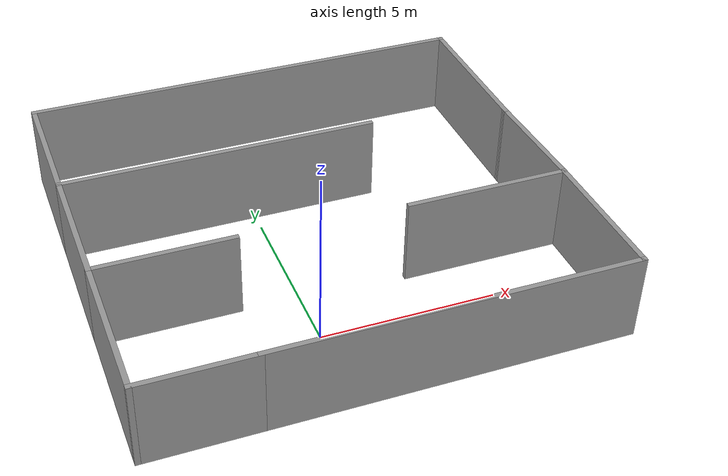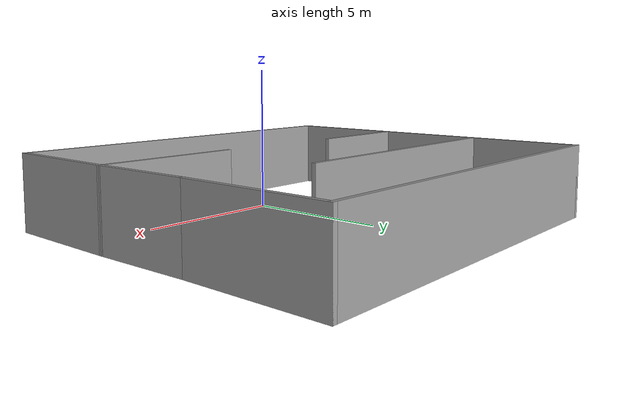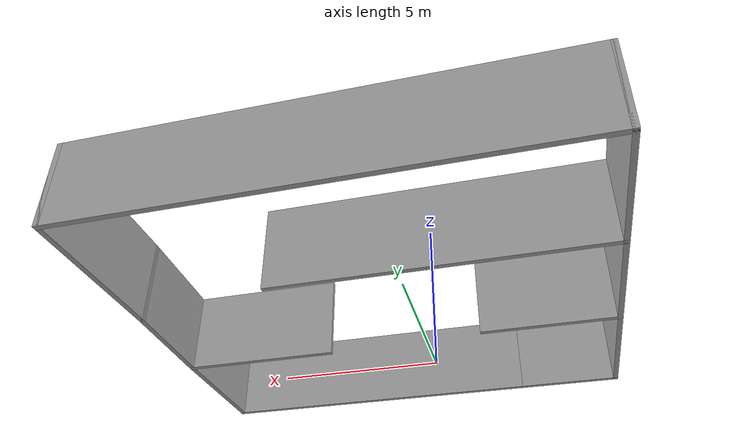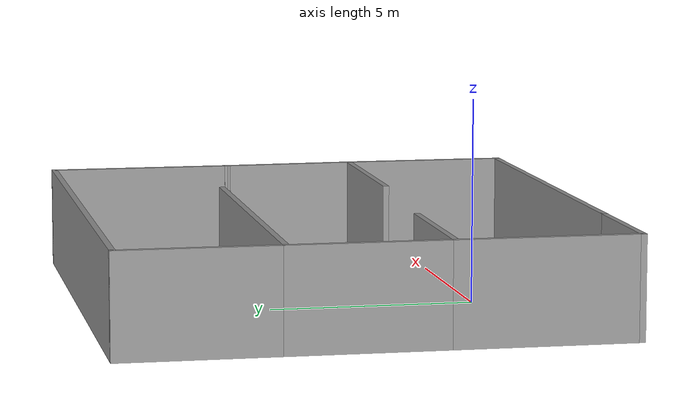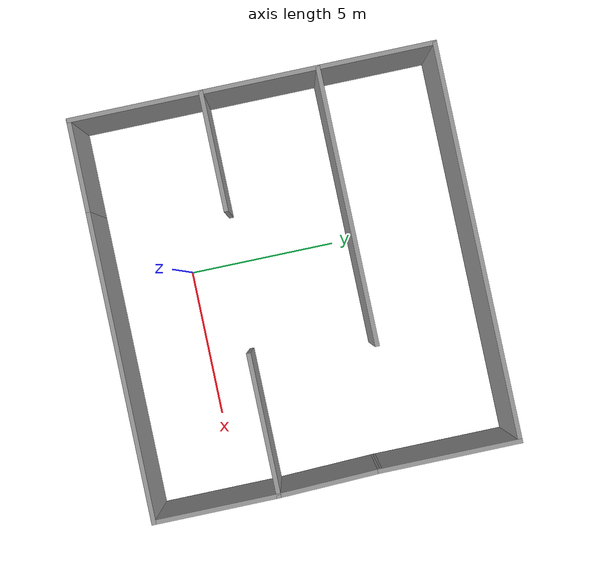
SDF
<?xml version='1.0'?>
<sdf version='1.7'>
  <model name='sample'>
    <pose>1.0811 3.425 0 0 -0 0</pose>
    <link name='Wall_10'>
      <collision name='Wall_10_Collision'>
        <geometry>
          <box>
            <size>4 0.15 2.5</size>
          </box>
        </geometry>
        <pose>0 0 1.25 0 -0 0</pose>
      </collision>
      <visual name='Wall_10_Visual'>
        <pose>0 0 1.25 0 -0 0</pose>
        <geometry>
          <box>
            <size>4 0.15 2.5</size>
          </box>
        </geometry>
        <material>
          <script>
            <uri>file://media/materials/scripts/gazebo.material</uri>
            <name>Gazebo/Grey</name>
          </script>
          <ambient>1 1 1 1</ambient>
        </material>
        <meta>
          <layer>0</layer>
        </meta>
      </visual>
      <pose>-6.6011 0.25 0 0 -0 1.5708</pose>
    </link>
    <link name='Wall_11'>
      <collision name='Wall_11_Collision'>
        <geometry>
          <box>
            <size>9.25 0.15 2.5</size>
          </box>
        </geometry>
        <pose>0 0 1.25 0 -0 0</pose>
      </collision>
      <visual name='Wall_11_Visual'>
        <pose>0 0 1.25 0 -0 0</pose>
        <geometry>
          <box>
            <size>9.25 0.15 2.5</size>
          </box>
        </geometry>
        <material>
          <script>
            <uri>file://media/materials/scripts/gazebo.material</uri>
            <name>Gazebo/Grey</name>
          </script>
          <ambient>1 1 1 1</ambient>
        </material>
        <meta>
          <layer>0</layer>
        </meta>
      </visual>
      <pose>-2.0511 2.175 0 0 -0 0</pose>
    </link>
    <link name='Wall_13'>
      <collision name='Wall_13_Collision'>
        <geometry>
          <box>
            <size>4 0.15 2.5</size>
          </box>
        </geometry>
        <pose>0 0 1.25 0 -0 0</pose>
      </collision>
      <visual name='Wall_13_Visual'>
        <pose>0 0 1.25 0 -0 0</pose>
        <geometry>
          <box>
            <size>4 0.15 2.5</size>
          </box>
        </geometry>
        <material>
          <script>
            <uri>file://media/materials/scripts/gazebo.material</uri>
            <name>Gazebo/Grey</name>
          </script>
          <ambient>1 1 1 1</ambient>
        </material>
        <meta>
          <layer>0</layer>
        </meta>
      </visual>
      <pose>-6.6011 4.1 0 0 -0 1.5708</pose>
    </link>
    <link name='Wall_14'>
      <collision name='Wall_14_Collision'>
        <geometry>
          <box>
            <size>13.25 0.15 2.5</size>
          </box>
        </geometry>
        <pose>0 0 1.25 0 -0 0</pose>
      </collision>
      <visual name='Wall_14_Visual'>
        <pose>0 0 1.25 0 -0 0</pose>
        <geometry>
          <box>
            <size>13.25 0.15 2.5</size>
          </box>
        </geometry>
        <material>
          <script>
            <uri>file://media/materials/scripts/gazebo.material</uri>
            <name>Gazebo/Grey</name>
          </script>
          <ambient>1 1 1 1</ambient>
        </material>
        <meta>
          <layer>0</layer>
        </meta>
      </visual>
      <pose>-0.051102 6.025 0 0 -0 0</pose>
    </link>
    <link name='Wall_15'>
      <collision name='Wall_15_Collision'>
        <geometry>
          <box>
            <size>4.75 0.15 2.5</size>
          </box>
        </geometry>
        <pose>0 0 1.25 0 -0 0</pose>
      </collision>
      <visual name='Wall_15_Visual'>
        <pose>0 0 1.25 0 -0 0</pose>
        <geometry>
          <box>
            <size>4.75 0.15 2.5</size>
          </box>
        </geometry>
        <material>
          <script>
            <uri>file://media/materials/scripts/gazebo.material</uri>
            <name>Gazebo/Grey</name>
          </script>
          <ambient>1 1 1 1</ambient>
        </material>
        <meta>
          <layer>0</layer>
        </meta>
      </visual>
      <pose>6.4989 3.725 0 0 -0 -1.5708</pose>
    </link>
    <link name='Wall_17'>
      <collision name='Wall_17_Collision'>
        <geometry>
          <box>
            <size>3.50149 0.15 2.5</size>
          </box>
        </geometry>
        <pose>0 0 1.25 0 -0 0</pose>
      </collision>
      <visual name='Wall_17_Visual'>
        <pose>0 0 1.25 0 -0 0</pose>
        <geometry>
          <box>
            <size>3.50149 0.15 2.5</size>
          </box>
        </geometry>
        <material>
          <script>
            <uri>file://media/materials/scripts/gazebo.material</uri>
            <name>Gazebo/Grey</name>
          </script>
          <ambient>1 1 1 1</ambient>
        </material>
        <meta>
          <layer>0</layer>
        </meta>
      </visual>
      <pose>6.5489 -0.25 0 0 -0 -1.54095</pose>
    </link>
    <link name='Wall_2'>
      <collision name='Wall_2_Collision'>
        <geometry>
          <box>
            <size>10.25 0.15 2.5</size>
          </box>
        </geometry>
        <pose>0 0 1.25 0 -0 0</pose>
      </collision>
      <visual name='Wall_2_Visual'>
        <pose>0 0 1.25 0 -0 0</pose>
        <geometry>
          <box>
            <size>10.25 0.15 2.5</size>
          </box>
        </geometry>
        <material>
          <script>
            <uri>file://media/materials/scripts/gazebo.material</uri>
            <name>Gazebo/Grey</name>
          </script>
          <ambient>1 1 1 1</ambient>
        </material>
        <meta>
          <layer>0</layer>
        </meta>
      </visual>
      <pose>1.5489 -6.025 0 0 -0 0</pose>
    </link>
    <link name='Wall_3'>
      <collision name='Wall_3_Collision'>
        <geometry>
          <box>
            <size>4.25 0.15 2.5</size>
          </box>
        </geometry>
        <pose>0 0 1.25 0 -0 0</pose>
      </collision>
      <visual name='Wall_3_Visual'>
        <pose>0 0 1.25 0 -0 0</pose>
        <geometry>
          <box>
            <size>4.25 0.15 2.5</size>
          </box>
        </geometry>
        <material>
          <script>
            <uri>file://media/materials/scripts/gazebo.material</uri>
            <name>Gazebo/Grey</name>
          </script>
          <ambient>1 1 1 1</ambient>
        </material>
        <meta>
          <layer>0</layer>
        </meta>
      </visual>
      <pose>6.5989 -3.975 0 0 -0 1.5708</pose>
    </link>
    <link name='Wall_4'>
      <collision name='Wall_4_Collision'>
        <geometry>
          <box>
            <size>4.75 0.15 2.5</size>
          </box>
        </geometry>
        <pose>0 0 1.25 0 -0 0</pose>
      </collision>
      <visual name='Wall_4_Visual'>
        <pose>0 0 1.25 0 -0 0</pose>
        <geometry>
          <box>
            <size>4.75 0.15 2.5</size>
          </box>
        </geometry>
        <material>
          <script>
            <uri>file://media/materials/scripts/gazebo.material</uri>
            <name>Gazebo/Grey</name>
          </script>
          <ambient>1 1 1 1</ambient>
        </material>
        <meta>
          <layer>0</layer>
        </meta>
      </visual>
      <pose>4.2989 -1.925 0 0 -0 3.14159</pose>
    </link>
    <link name='Wall_6'>
      <collision name='Wall_6_Collision'>
        <geometry>
          <box>
            <size>3.25 0.15 2.5</size>
          </box>
        </geometry>
        <pose>0 0 1.25 0 -0 0</pose>
      </collision>
      <visual name='Wall_6_Visual'>
        <pose>0 0 1.25 0 -0 0</pose>
        <geometry>
          <box>
            <size>3.25 0.15 2.5</size>
          </box>
        </geometry>
        <material>
          <script>
            <uri>file://media/materials/scripts/gazebo.material</uri>
            <name>Gazebo/Grey</name>
          </script>
          <ambient>1 1 1 1</ambient>
        </material>
        <meta>
          <layer>0</layer>
        </meta>
      </visual>
      <pose>-5.0511 -6.025 0 0 -0 3.14159</pose>
    </link>
    <link name='Wall_7'>
      <collision name='Wall_7_Collision'>
        <geometry>
          <box>
            <size>4.5 0.15 2.5</size>
          </box>
        </geometry>
        <pose>0 0 1.25 0 -0 0</pose>
      </collision>
      <visual name='Wall_7_Visual'>
        <pose>0 0 1.25 0 -0 0</pose>
        <geometry>
          <box>
            <size>4.5 0.15 2.5</size>
          </box>
        </geometry>
        <material>
          <script>
            <uri>file://media/materials/scripts/gazebo.material</uri>
            <name>Gazebo/Grey</name>
          </script>
          <ambient>1 1 1 1</ambient>
        </material>
        <meta>
          <layer>0</layer>
        </meta>
      </visual>
      <pose>-6.6011 -3.85 0 0 -0 1.5708</pose>
    </link>
    <link name='Wall_8'>
      <collision name='Wall_8_Collision'>
        <geometry>
          <box>
            <size>4 0.15 2.5</size>
          </box>
        </geometry>
        <pose>0 0 1.25 0 -0 0</pose>
      </collision>
      <visual name='Wall_8_Visual'>
        <pose>0 0 1.25 0 -0 0</pose>
        <geometry>
          <box>
            <size>4 0.15 2.5</size>
          </box>
        </geometry>
        <material>
          <script>
            <uri>file://media/materials/scripts/gazebo.material</uri>
            <name>Gazebo/Grey</name>
          </script>
          <ambient>1 1 1 1</ambient>
        </material>
        <meta>
          <layer>0</layer>
        </meta>
      </visual>
      <pose>-4.6761 -1.675 0 0 -0 0</pose>
    </link>
    <static>1</static>
  </model>
</sdf>
